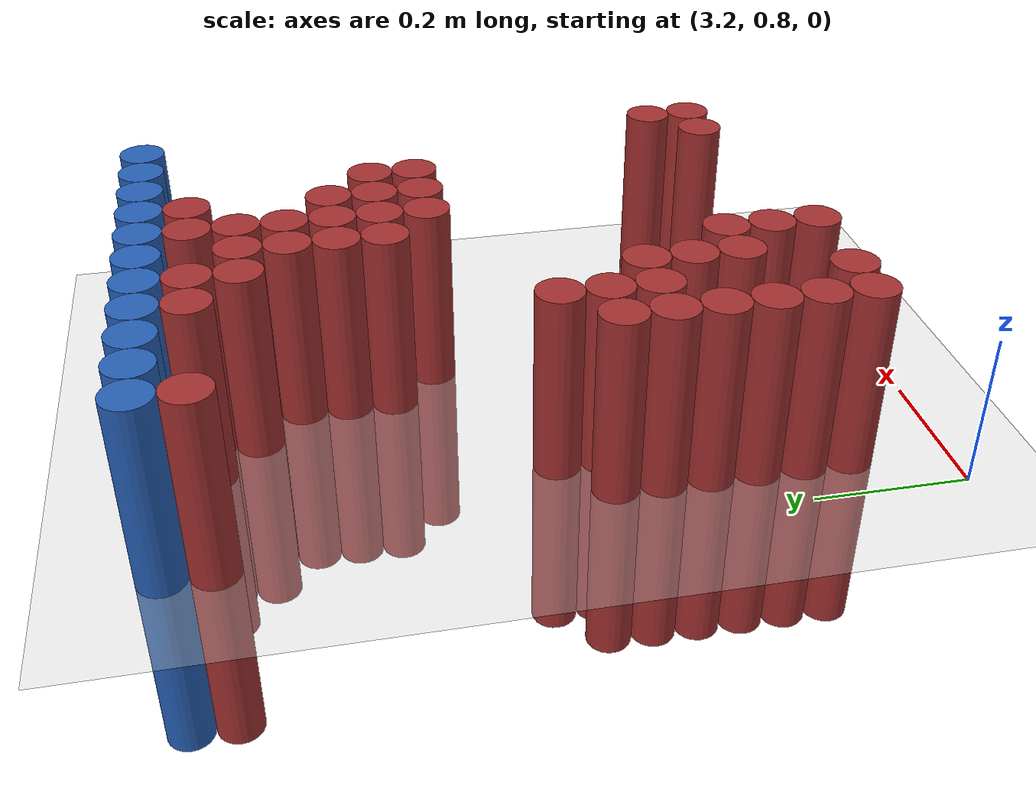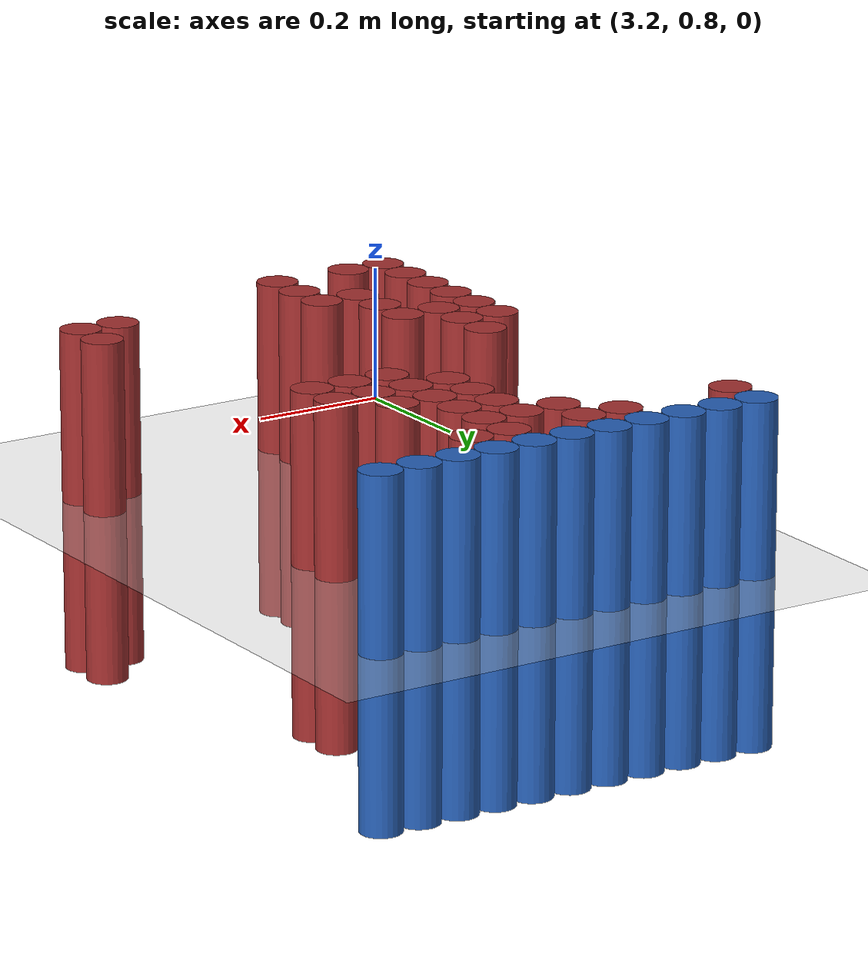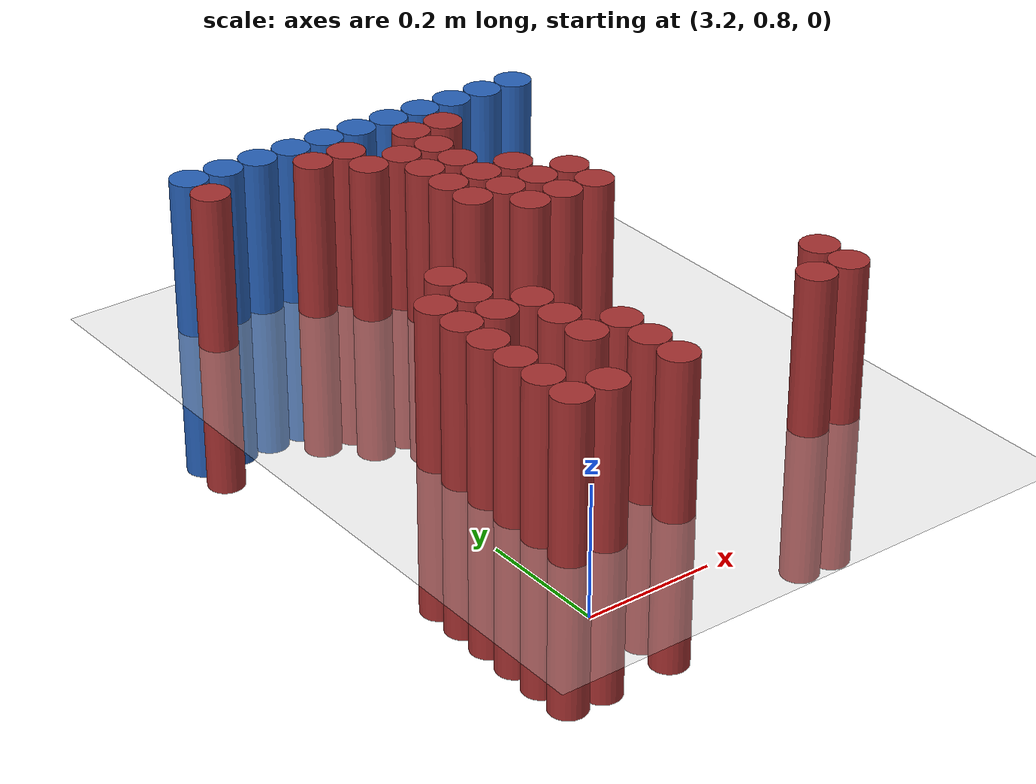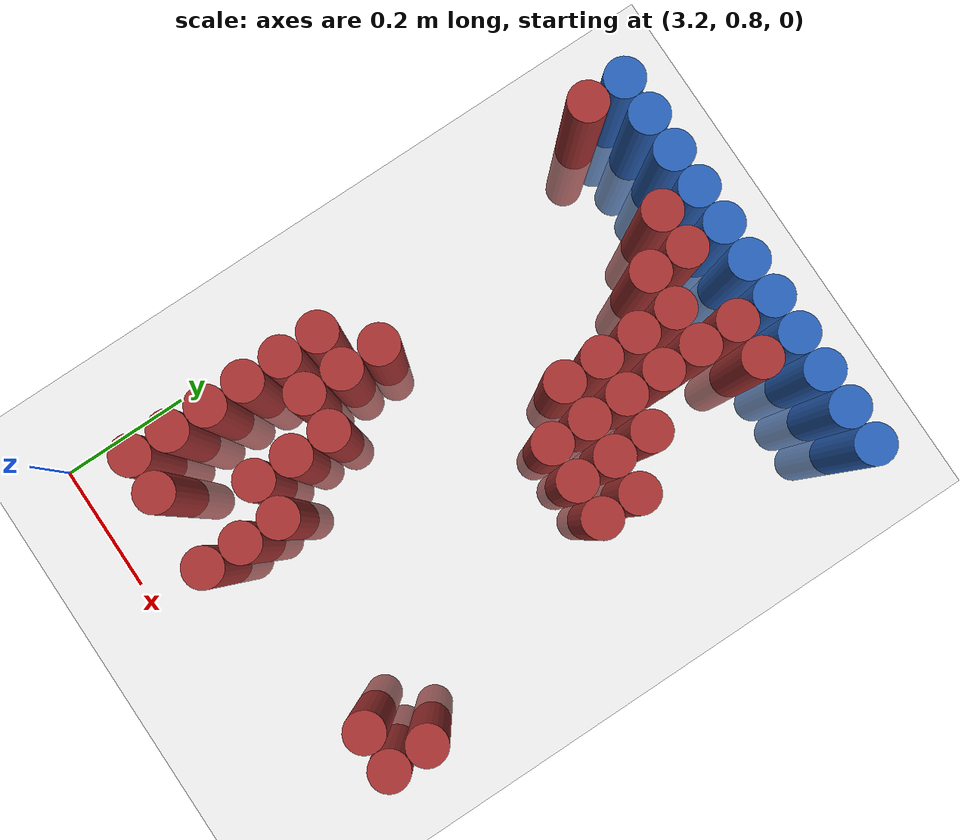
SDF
<sdf version="1.6">
 <world name="default">
  <model name="ground_plane">
   <static>1</static>
   <link name="link">
    <collision name="collision">
     <geometry><plane><normal>0 0 1</normal><size>100 100</size></plane></geometry>
     <surface><friction><ode><mu>100</mu><mu2>50</mu2></ode></friction></surface>
    </collision>
    <visual name="visual">
     <cast_shadows>0</cast_shadows>
     <geometry><plane><normal>0 0 1</normal><size>100 100</size></plane></geometry>
     <material>
      <script><uri>file://media/materials/scripts/gazebo.material</uri><name>Gazebo/Grey</name></script>
     </material>
    </visual>
   </link>
  </model>
  <model name="unit_cylinder_114">
   <static>1</static>
   <pose>3.210000 1.770000 0.000000 0.000000 0.000000 0.000000</pose>
   <link name="link">
    <inertial>
     <mass>1</mass>
     <inertia><ixx>0.145833</ixx><ixy>0</ixy><ixz>0</ixz><iyy>0.145833</iyy><iyz>0</iyz><izz>0.125</izz></inertia>
    </inertial>
    <collision name="collision">
     <geometry><cylinder><radius>0.030000</radius><length>0.5</length></cylinder></geometry>
    </collision>
    <visual name="visual">
     <geometry><cylinder><radius>0.030000</radius><length>0.5</length></cylinder></geometry>
     <material>
      <ambient>0.152000 0.379000 0.720000 1</ambient>
      <diffuse>0.152000 0.379000 0.720000 1</diffuse>
     </material>
     <material>
      <script><name>Gazebo/Grey</name><uri>file://media/materials/scripts/gazebo.material</uri></script>
     </material>
    </visual>
   </link>
  </model>
  <model name="unit_cylinder_115">
   <static>1</static>
   <pose>3.270000 1.770000 0.000000 0.000000 0.000000 0.000000</pose>
   <link name="link">
    <inertial>
     <mass>1</mass>
     <inertia><ixx>0.145833</ixx><ixy>0</ixy><ixz>0</ixz><iyy>0.145833</iyy><iyz>0</iyz><izz>0.125</izz></inertia>
    </inertial>
    <collision name="collision">
     <geometry><cylinder><radius>0.030000</radius><length>0.5</length></cylinder></geometry>
    </collision>
    <visual name="visual">
     <geometry><cylinder><radius>0.030000</radius><length>0.5</length></cylinder></geometry>
     <material>
      <ambient>0.152000 0.379000 0.720000 1</ambient>
      <diffuse>0.152000 0.379000 0.720000 1</diffuse>
     </material>
     <material>
      <script><name>Gazebo/Grey</name><uri>file://media/materials/scripts/gazebo.material</uri></script>
     </material>
    </visual>
   </link>
  </model>
  <model name="unit_cylinder_116">
   <static>1</static>
   <pose>3.330000 1.770000 0.000000 0.000000 0.000000 0.000000</pose>
   <link name="link">
    <inertial>
     <mass>1</mass>
     <inertia><ixx>0.145833</ixx><ixy>0</ixy><ixz>0</ixz><iyy>0.145833</iyy><iyz>0</iyz><izz>0.125</izz></inertia>
    </inertial>
    <collision name="collision">
     <geometry><cylinder><radius>0.030000</radius><length>0.5</length></cylinder></geometry>
    </collision>
    <visual name="visual">
     <geometry><cylinder><radius>0.030000</radius><length>0.5</length></cylinder></geometry>
     <material>
      <ambient>0.152000 0.379000 0.720000 1</ambient>
      <diffuse>0.152000 0.379000 0.720000 1</diffuse>
     </material>
     <material>
      <script><name>Gazebo/Grey</name><uri>file://media/materials/scripts/gazebo.material</uri></script>
     </material>
    </visual>
   </link>
  </model>
  <model name="unit_cylinder_117">
   <static>1</static>
   <pose>3.390000 1.770000 0.000000 0.000000 0.000000 0.000000</pose>
   <link name="link">
    <inertial>
     <mass>1</mass>
     <inertia><ixx>0.145833</ixx><ixy>0</ixy><ixz>0</ixz><iyy>0.145833</iyy><iyz>0</iyz><izz>0.125</izz></inertia>
    </inertial>
    <collision name="collision">
     <geometry><cylinder><radius>0.030000</radius><length>0.5</length></cylinder></geometry>
    </collision>
    <visual name="visual">
     <geometry><cylinder><radius>0.030000</radius><length>0.5</length></cylinder></geometry>
     <material>
      <ambient>0.152000 0.379000 0.720000 1</ambient>
      <diffuse>0.152000 0.379000 0.720000 1</diffuse>
     </material>
     <material>
      <script><name>Gazebo/Grey</name><uri>file://media/materials/scripts/gazebo.material</uri></script>
     </material>
    </visual>
   </link>
  </model>
  <model name="unit_cylinder_118">
   <static>1</static>
   <pose>3.450000 1.770000 0.000000 0.000000 0.000000 0.000000</pose>
   <link name="link">
    <inertial>
     <mass>1</mass>
     <inertia><ixx>0.145833</ixx><ixy>0</ixy><ixz>0</ixz><iyy>0.145833</iyy><iyz>0</iyz><izz>0.125</izz></inertia>
    </inertial>
    <collision name="collision">
     <geometry><cylinder><radius>0.030000</radius><length>0.5</length></cylinder></geometry>
    </collision>
    <visual name="visual">
     <geometry><cylinder><radius>0.030000</radius><length>0.5</length></cylinder></geometry>
     <material>
      <ambient>0.152000 0.379000 0.720000 1</ambient>
      <diffuse>0.152000 0.379000 0.720000 1</diffuse>
     </material>
     <material>
      <script><name>Gazebo/Grey</name><uri>file://media/materials/scripts/gazebo.material</uri></script>
     </material>
    </visual>
   </link>
  </model>
  <model name="unit_cylinder_119">
   <static>1</static>
   <pose>3.510000 1.770000 0.000000 0.000000 0.000000 0.000000</pose>
   <link name="link">
    <inertial>
     <mass>1</mass>
     <inertia><ixx>0.145833</ixx><ixy>0</ixy><ixz>0</ixz><iyy>0.145833</iyy><iyz>0</iyz><izz>0.125</izz></inertia>
    </inertial>
    <collision name="collision">
     <geometry><cylinder><radius>0.030000</radius><length>0.5</length></cylinder></geometry>
    </collision>
    <visual name="visual">
     <geometry><cylinder><radius>0.030000</radius><length>0.5</length></cylinder></geometry>
     <material>
      <ambient>0.152000 0.379000 0.720000 1</ambient>
      <diffuse>0.152000 0.379000 0.720000 1</diffuse>
     </material>
     <material>
      <script><name>Gazebo/Grey</name><uri>file://media/materials/scripts/gazebo.material</uri></script>
     </material>
    </visual>
   </link>
  </model>
  <model name="unit_cylinder_120">
   <static>1</static>
   <pose>3.570000 1.770000 0.000000 0.000000 0.000000 0.000000</pose>
   <link name="link">
    <inertial>
     <mass>1</mass>
     <inertia><ixx>0.145833</ixx><ixy>0</ixy><ixz>0</ixz><iyy>0.145833</iyy><iyz>0</iyz><izz>0.125</izz></inertia>
    </inertial>
    <collision name="collision">
     <geometry><cylinder><radius>0.030000</radius><length>0.5</length></cylinder></geometry>
    </collision>
    <visual name="visual">
     <geometry><cylinder><radius>0.030000</radius><length>0.5</length></cylinder></geometry>
     <material>
      <ambient>0.152000 0.379000 0.720000 1</ambient>
      <diffuse>0.152000 0.379000 0.720000 1</diffuse>
     </material>
     <material>
      <script><name>Gazebo/Grey</name><uri>file://media/materials/scripts/gazebo.material</uri></script>
     </material>
    </visual>
   </link>
  </model>
  <model name="unit_cylinder_121">
   <static>1</static>
   <pose>3.630000 1.770000 0.000000 0.000000 0.000000 0.000000</pose>
   <link name="link">
    <inertial>
     <mass>1</mass>
     <inertia><ixx>0.145833</ixx><ixy>0</ixy><ixz>0</ixz><iyy>0.145833</iyy><iyz>0</iyz><izz>0.125</izz></inertia>
    </inertial>
    <collision name="collision">
     <geometry><cylinder><radius>0.030000</radius><length>0.5</length></cylinder></geometry>
    </collision>
    <visual name="visual">
     <geometry><cylinder><radius>0.030000</radius><length>0.5</length></cylinder></geometry>
     <material>
      <ambient>0.152000 0.379000 0.720000 1</ambient>
      <diffuse>0.152000 0.379000 0.720000 1</diffuse>
     </material>
     <material>
      <script><name>Gazebo/Grey</name><uri>file://media/materials/scripts/gazebo.material</uri></script>
     </material>
    </visual>
   </link>
  </model>
  <model name="unit_cylinder_122">
   <static>1</static>
   <pose>3.690000 1.770000 0.000000 0.000000 0.000000 0.000000</pose>
   <link name="link">
    <inertial>
     <mass>1</mass>
     <inertia><ixx>0.145833</ixx><ixy>0</ixy><ixz>0</ixz><iyy>0.145833</iyy><iyz>0</iyz><izz>0.125</izz></inertia>
    </inertial>
    <collision name="collision">
     <geometry><cylinder><radius>0.030000</radius><length>0.5</length></cylinder></geometry>
    </collision>
    <visual name="visual">
     <geometry><cylinder><radius>0.030000</radius><length>0.5</length></cylinder></geometry>
     <material>
      <ambient>0.152000 0.379000 0.720000 1</ambient>
      <diffuse>0.152000 0.379000 0.720000 1</diffuse>
     </material>
     <material>
      <script><name>Gazebo/Grey</name><uri>file://media/materials/scripts/gazebo.material</uri></script>
     </material>
    </visual>
   </link>
  </model>
  <model name="unit_cylinder_123">
   <static>1</static>
   <pose>3.750000 1.770000 0.000000 0.000000 0.000000 0.000000</pose>
   <link name="link">
    <inertial>
     <mass>1</mass>
     <inertia><ixx>0.145833</ixx><ixy>0</ixy><ixz>0</ixz><iyy>0.145833</iyy><iyz>0</iyz><izz>0.125</izz></inertia>
    </inertial>
    <collision name="collision">
     <geometry><cylinder><radius>0.030000</radius><length>0.5</length></cylinder></geometry>
    </collision>
    <visual name="visual">
     <geometry><cylinder><radius>0.030000</radius><length>0.5</length></cylinder></geometry>
     <material>
      <ambient>0.152000 0.379000 0.720000 1</ambient>
      <diffuse>0.152000 0.379000 0.720000 1</diffuse>
     </material>
     <material>
      <script><name>Gazebo/Grey</name><uri>file://media/materials/scripts/gazebo.material</uri></script>
     </material>
    </visual>
   </link>
  </model>
  <model name="unit_cylinder_124">
   <static>1</static>
   <pose>3.810000 1.770000 0.000000 0.000000 0.000000 0.000000</pose>
   <link name="link">
    <inertial>
     <mass>1</mass>
     <inertia><ixx>0.145833</ixx><ixy>0</ixy><ixz>0</ixz><iyy>0.145833</iyy><iyz>0</iyz><izz>0.125</izz></inertia>
    </inertial>
    <collision name="collision">
     <geometry><cylinder><radius>0.030000</radius><length>0.5</length></cylinder></geometry>
    </collision>
    <visual name="visual">
     <geometry><cylinder><radius>0.030000</radius><length>0.5</length></cylinder></geometry>
     <material>
      <ambient>0.152000 0.379000 0.720000 1</ambient>
      <diffuse>0.152000 0.379000 0.720000 1</diffuse>
     </material>
     <material>
      <script><name>Gazebo/Grey</name><uri>file://media/materials/scripts/gazebo.material</uri></script>
     </material>
    </visual>
   </link>
  </model>
  <model name="unit_cylinder_130">
   <static>1</static>
   <pose>3.210000 1.710000 0.000000 0.000000 0.000000 0.000000</pose>
   <link name="link">
    <inertial>
     <mass>1</mass>
     <inertia><ixx>0.145833</ixx><ixy>0</ixy><ixz>0</ixz><iyy>0.145833</iyy><iyz>0</iyz><izz>0.125</izz></inertia>
    </inertial>
    <collision name="collision">
     <geometry><cylinder><radius>0.030000</radius><length>0.5</length></cylinder></geometry>
    </collision>
    <visual name="visual">
     <geometry><cylinder><radius>0.030000</radius><length>0.5</length></cylinder></geometry>
     <material>
      <ambient>0.648000 0.192000 0.192000 1</ambient>
      <diffuse>0.648000 0.192000 0.192000 1</diffuse>
     </material>
     <material>
      <script><name>Gazebo/Grey</name><uri>file://media/materials/scripts/gazebo.material</uri></script>
     </material>
    </visual>
   </link>
  </model>
  <model name="unit_cylinder_131">
   <static>1</static>
   <pose>3.390000 1.710000 0.000000 0.000000 0.000000 0.000000</pose>
   <link name="link">
    <inertial>
     <mass>1</mass>
     <inertia><ixx>0.145833</ixx><ixy>0</ixy><ixz>0</ixz><iyy>0.145833</iyy><iyz>0</iyz><izz>0.125</izz></inertia>
    </inertial>
    <collision name="collision">
     <geometry><cylinder><radius>0.030000</radius><length>0.5</length></cylinder></geometry>
    </collision>
    <visual name="visual">
     <geometry><cylinder><radius>0.030000</radius><length>0.5</length></cylinder></geometry>
     <material>
      <ambient>0.648000 0.192000 0.192000 1</ambient>
      <diffuse>0.648000 0.192000 0.192000 1</diffuse>
     </material>
     <material>
      <script><name>Gazebo/Grey</name><uri>file://media/materials/scripts/gazebo.material</uri></script>
     </material>
    </visual>
   </link>
  </model>
  <model name="unit_cylinder_132">
   <static>1</static>
   <pose>3.450000 1.710000 0.000000 0.000000 0.000000 0.000000</pose>
   <link name="link">
    <inertial>
     <mass>1</mass>
     <inertia><ixx>0.145833</ixx><ixy>0</ixy><ixz>0</ixz><iyy>0.145833</iyy><iyz>0</iyz><izz>0.125</izz></inertia>
    </inertial>
    <collision name="collision">
     <geometry><cylinder><radius>0.030000</radius><length>0.5</length></cylinder></geometry>
    </collision>
    <visual name="visual">
     <geometry><cylinder><radius>0.030000</radius><length>0.5</length></cylinder></geometry>
     <material>
      <ambient>0.648000 0.192000 0.192000 1</ambient>
      <diffuse>0.648000 0.192000 0.192000 1</diffuse>
     </material>
     <material>
      <script><name>Gazebo/Grey</name><uri>file://media/materials/scripts/gazebo.material</uri></script>
     </material>
    </visual>
   </link>
  </model>
  <model name="unit_cylinder_133">
   <static>1</static>
   <pose>3.570000 1.710000 0.000000 0.000000 0.000000 0.000000</pose>
   <link name="link">
    <inertial>
     <mass>1</mass>
     <inertia><ixx>0.145833</ixx><ixy>0</ixy><ixz>0</ixz><iyy>0.145833</iyy><iyz>0</iyz><izz>0.125</izz></inertia>
    </inertial>
    <collision name="collision">
     <geometry><cylinder><radius>0.030000</radius><length>0.5</length></cylinder></geometry>
    </collision>
    <visual name="visual">
     <geometry><cylinder><radius>0.030000</radius><length>0.5</length></cylinder></geometry>
     <material>
      <ambient>0.648000 0.192000 0.192000 1</ambient>
      <diffuse>0.648000 0.192000 0.192000 1</diffuse>
     </material>
     <material>
      <script><name>Gazebo/Grey</name><uri>file://media/materials/scripts/gazebo.material</uri></script>
     </material>
    </visual>
   </link>
  </model>
  <model name="unit_cylinder_134">
   <static>1</static>
   <pose>3.630000 1.710000 0.000000 0.000000 0.000000 0.000000</pose>
   <link name="link">
    <inertial>
     <mass>1</mass>
     <inertia><ixx>0.145833</ixx><ixy>0</ixy><ixz>0</ixz><iyy>0.145833</iyy><iyz>0</iyz><izz>0.125</izz></inertia>
    </inertial>
    <collision name="collision">
     <geometry><cylinder><radius>0.030000</radius><length>0.5</length></cylinder></geometry>
    </collision>
    <visual name="visual">
     <geometry><cylinder><radius>0.030000</radius><length>0.5</length></cylinder></geometry>
     <material>
      <ambient>0.648000 0.192000 0.192000 1</ambient>
      <diffuse>0.648000 0.192000 0.192000 1</diffuse>
     </material>
     <material>
      <script><name>Gazebo/Grey</name><uri>file://media/materials/scripts/gazebo.material</uri></script>
     </material>
    </visual>
   </link>
  </model>
  <model name="unit_cylinder_146">
   <static>1</static>
   <pose>3.450000 1.650000 0.000000 0.000000 0.000000 0.000000</pose>
   <link name="link">
    <inertial>
     <mass>1</mass>
     <inertia><ixx>0.145833</ixx><ixy>0</ixy><ixz>0</ixz><iyy>0.145833</iyy><iyz>0</iyz><izz>0.125</izz></inertia>
    </inertial>
    <collision name="collision">
     <geometry><cylinder><radius>0.030000</radius><length>0.5</length></cylinder></geometry>
    </collision>
    <visual name="visual">
     <geometry><cylinder><radius>0.030000</radius><length>0.5</length></cylinder></geometry>
     <material>
      <ambient>0.648000 0.192000 0.192000 1</ambient>
      <diffuse>0.648000 0.192000 0.192000 1</diffuse>
     </material>
     <material>
      <script><name>Gazebo/Grey</name><uri>file://media/materials/scripts/gazebo.material</uri></script>
     </material>
    </visual>
   </link>
  </model>
  <model name="unit_cylinder_147">
   <static>1</static>
   <pose>3.510000 1.650000 0.000000 0.000000 0.000000 0.000000</pose>
   <link name="link">
    <inertial>
     <mass>1</mass>
     <inertia><ixx>0.145833</ixx><ixy>0</ixy><ixz>0</ixz><iyy>0.145833</iyy><iyz>0</iyz><izz>0.125</izz></inertia>
    </inertial>
    <collision name="collision">
     <geometry><cylinder><radius>0.030000</radius><length>0.5</length></cylinder></geometry>
    </collision>
    <visual name="visual">
     <geometry><cylinder><radius>0.030000</radius><length>0.5</length></cylinder></geometry>
     <material>
      <ambient>0.648000 0.192000 0.192000 1</ambient>
      <diffuse>0.648000 0.192000 0.192000 1</diffuse>
     </material>
     <material>
      <script><name>Gazebo/Grey</name><uri>file://media/materials/scripts/gazebo.material</uri></script>
     </material>
    </visual>
   </link>
  </model>
  <model name="unit_cylinder_148">
   <static>1</static>
   <pose>3.570000 1.650000 0.000000 0.000000 0.000000 0.000000</pose>
   <link name="link">
    <inertial>
     <mass>1</mass>
     <inertia><ixx>0.145833</ixx><ixy>0</ixy><ixz>0</ixz><iyy>0.145833</iyy><iyz>0</iyz><izz>0.125</izz></inertia>
    </inertial>
    <collision name="collision">
     <geometry><cylinder><radius>0.030000</radius><length>0.5</length></cylinder></geometry>
    </collision>
    <visual name="visual">
     <geometry><cylinder><radius>0.030000</radius><length>0.5</length></cylinder></geometry>
     <material>
      <ambient>0.648000 0.192000 0.192000 1</ambient>
      <diffuse>0.648000 0.192000 0.192000 1</diffuse>
     </material>
     <material>
      <script><name>Gazebo/Grey</name><uri>file://media/materials/scripts/gazebo.material</uri></script>
     </material>
    </visual>
   </link>
  </model>
  <model name="unit_cylinder_164">
   <static>1</static>
   <pose>3.510000 1.590000 0.000000 0.000000 0.000000 0.000000</pose>
   <link name="link">
    <inertial>
     <mass>1</mass>
     <inertia><ixx>0.145833</ixx><ixy>0</ixy><ixz>0</ixz><iyy>0.145833</iyy><iyz>0</iyz><izz>0.125</izz></inertia>
    </inertial>
    <collision name="collision">
     <geometry><cylinder><radius>0.030000</radius><length>0.5</length></cylinder></geometry>
    </collision>
    <visual name="visual">
     <geometry><cylinder><radius>0.030000</radius><length>0.5</length></cylinder></geometry>
     <material>
      <ambient>0.648000 0.192000 0.192000 1</ambient>
      <diffuse>0.648000 0.192000 0.192000 1</diffuse>
     </material>
     <material>
      <script><name>Gazebo/Grey</name><uri>file://media/materials/scripts/gazebo.material</uri></script>
     </material>
    </visual>
   </link>
  </model>
  <model name="unit_cylinder_165">
   <static>1</static>
   <pose>3.570000 1.590000 0.000000 0.000000 0.000000 0.000000</pose>
   <link name="link">
    <inertial>
     <mass>1</mass>
     <inertia><ixx>0.145833</ixx><ixy>0</ixy><ixz>0</ixz><iyy>0.145833</iyy><iyz>0</iyz><izz>0.125</izz></inertia>
    </inertial>
    <collision name="collision">
     <geometry><cylinder><radius>0.030000</radius><length>0.5</length></cylinder></geometry>
    </collision>
    <visual name="visual">
     <geometry><cylinder><radius>0.030000</radius><length>0.5</length></cylinder></geometry>
     <material>
      <ambient>0.648000 0.192000 0.192000 1</ambient>
      <diffuse>0.648000 0.192000 0.192000 1</diffuse>
     </material>
     <material>
      <script><name>Gazebo/Grey</name><uri>file://media/materials/scripts/gazebo.material</uri></script>
     </material>
    </visual>
   </link>
  </model>
  <model name="unit_cylinder_174">
   <static>1</static>
   <pose>3.510000 1.530000 0.000000 0.000000 0.000000 0.000000</pose>
   <link name="link">
    <inertial>
     <mass>1</mass>
     <inertia><ixx>0.145833</ixx><ixy>0</ixy><ixz>0</ixz><iyy>0.145833</iyy><iyz>0</iyz><izz>0.125</izz></inertia>
    </inertial>
    <collision name="collision">
     <geometry><cylinder><radius>0.030000</radius><length>0.5</length></cylinder></geometry>
    </collision>
    <visual name="visual">
     <geometry><cylinder><radius>0.030000</radius><length>0.5</length></cylinder></geometry>
     <material>
      <ambient>0.648000 0.192000 0.192000 1</ambient>
      <diffuse>0.648000 0.192000 0.192000 1</diffuse>
     </material>
     <material>
      <script><name>Gazebo/Grey</name><uri>file://media/materials/scripts/gazebo.material</uri></script>
     </material>
    </visual>
   </link>
  </model>
  <model name="unit_cylinder_175">
   <static>1</static>
   <pose>3.570000 1.530000 0.000000 0.000000 0.000000 0.000000</pose>
   <link name="link">
    <inertial>
     <mass>1</mass>
     <inertia><ixx>0.145833</ixx><ixy>0</ixy><ixz>0</ixz><iyy>0.145833</iyy><iyz>0</iyz><izz>0.125</izz></inertia>
    </inertial>
    <collision name="collision">
     <geometry><cylinder><radius>0.030000</radius><length>0.5</length></cylinder></geometry>
    </collision>
    <visual name="visual">
     <geometry><cylinder><radius>0.030000</radius><length>0.5</length></cylinder></geometry>
     <material>
      <ambient>0.648000 0.192000 0.192000 1</ambient>
      <diffuse>0.648000 0.192000 0.192000 1</diffuse>
     </material>
     <material>
      <script><name>Gazebo/Grey</name><uri>file://media/materials/scripts/gazebo.material</uri></script>
     </material>
    </visual>
   </link>
  </model>
  <model name="unit_cylinder_176">
   <static>1</static>
   <pose>3.630000 1.530000 0.000000 0.000000 0.000000 0.000000</pose>
   <link name="link">
    <inertial>
     <mass>1</mass>
     <inertia><ixx>0.145833</ixx><ixy>0</ixy><ixz>0</ixz><iyy>0.145833</iyy><iyz>0</iyz><izz>0.125</izz></inertia>
    </inertial>
    <collision name="collision">
     <geometry><cylinder><radius>0.030000</radius><length>0.5</length></cylinder></geometry>
    </collision>
    <visual name="visual">
     <geometry><cylinder><radius>0.030000</radius><length>0.5</length></cylinder></geometry>
     <material>
      <ambient>0.648000 0.192000 0.192000 1</ambient>
      <diffuse>0.648000 0.192000 0.192000 1</diffuse>
     </material>
     <material>
      <script><name>Gazebo/Grey</name><uri>file://media/materials/scripts/gazebo.material</uri></script>
     </material>
    </visual>
   </link>
  </model>
  <model name="unit_cylinder_184">
   <static>1</static>
   <pose>3.510000 1.470000 0.000000 0.000000 0.000000 0.000000</pose>
   <link name="link">
    <inertial>
     <mass>1</mass>
     <inertia><ixx>0.145833</ixx><ixy>0</ixy><ixz>0</ixz><iyy>0.145833</iyy><iyz>0</iyz><izz>0.125</izz></inertia>
    </inertial>
    <collision name="collision">
     <geometry><cylinder><radius>0.030000</radius><length>0.5</length></cylinder></geometry>
    </collision>
    <visual name="visual">
     <geometry><cylinder><radius>0.030000</radius><length>0.5</length></cylinder></geometry>
     <material>
      <ambient>0.648000 0.192000 0.192000 1</ambient>
      <diffuse>0.648000 0.192000 0.192000 1</diffuse>
     </material>
     <material>
      <script><name>Gazebo/Grey</name><uri>file://media/materials/scripts/gazebo.material</uri></script>
     </material>
    </visual>
   </link>
  </model>
  <model name="unit_cylinder_185">
   <static>1</static>
   <pose>3.570000 1.470000 0.000000 0.000000 0.000000 0.000000</pose>
   <link name="link">
    <inertial>
     <mass>1</mass>
     <inertia><ixx>0.145833</ixx><ixy>0</ixy><ixz>0</ixz><iyy>0.145833</iyy><iyz>0</iyz><izz>0.125</izz></inertia>
    </inertial>
    <collision name="collision">
     <geometry><cylinder><radius>0.030000</radius><length>0.5</length></cylinder></geometry>
    </collision>
    <visual name="visual">
     <geometry><cylinder><radius>0.030000</radius><length>0.5</length></cylinder></geometry>
     <material>
      <ambient>0.648000 0.192000 0.192000 1</ambient>
      <diffuse>0.648000 0.192000 0.192000 1</diffuse>
     </material>
     <material>
      <script><name>Gazebo/Grey</name><uri>file://media/materials/scripts/gazebo.material</uri></script>
     </material>
    </visual>
   </link>
  </model>
  <model name="unit_cylinder_186">
   <static>1</static>
   <pose>3.630000 1.470000 0.000000 0.000000 0.000000 0.000000</pose>
   <link name="link">
    <inertial>
     <mass>1</mass>
     <inertia><ixx>0.145833</ixx><ixy>0</ixy><ixz>0</ixz><iyy>0.145833</iyy><iyz>0</iyz><izz>0.125</izz></inertia>
    </inertial>
    <collision name="collision">
     <geometry><cylinder><radius>0.030000</radius><length>0.5</length></cylinder></geometry>
    </collision>
    <visual name="visual">
     <geometry><cylinder><radius>0.030000</radius><length>0.5</length></cylinder></geometry>
     <material>
      <ambient>0.648000 0.192000 0.192000 1</ambient>
      <diffuse>0.648000 0.192000 0.192000 1</diffuse>
     </material>
     <material>
      <script><name>Gazebo/Grey</name><uri>file://media/materials/scripts/gazebo.material</uri></script>
     </material>
    </visual>
   </link>
  </model>
  <model name="unit_cylinder_187">
   <static>1</static>
   <pose>3.690000 1.470000 0.000000 0.000000 0.000000 0.000000</pose>
   <link name="link">
    <inertial>
     <mass>1</mass>
     <inertia><ixx>0.145833</ixx><ixy>0</ixy><ixz>0</ixz><iyy>0.145833</iyy><iyz>0</iyz><izz>0.125</izz></inertia>
    </inertial>
    <collision name="collision">
     <geometry><cylinder><radius>0.030000</radius><length>0.5</length></cylinder></geometry>
    </collision>
    <visual name="visual">
     <geometry><cylinder><radius>0.030000</radius><length>0.5</length></cylinder></geometry>
     <material>
      <ambient>0.648000 0.192000 0.192000 1</ambient>
      <diffuse>0.648000 0.192000 0.192000 1</diffuse>
     </material>
     <material>
      <script><name>Gazebo/Grey</name><uri>file://media/materials/scripts/gazebo.material</uri></script>
     </material>
    </visual>
   </link>
  </model>
  <model name="unit_cylinder_194">
   <static>1</static>
   <pose>3.570000 1.410000 0.000000 0.000000 0.000000 0.000000</pose>
   <link name="link">
    <inertial>
     <mass>1</mass>
     <inertia><ixx>0.145833</ixx><ixy>0</ixy><ixz>0</ixz><iyy>0.145833</iyy><iyz>0</iyz><izz>0.125</izz></inertia>
    </inertial>
    <collision name="collision">
     <geometry><cylinder><radius>0.030000</radius><length>0.5</length></cylinder></geometry>
    </collision>
    <visual name="visual">
     <geometry><cylinder><radius>0.030000</radius><length>0.5</length></cylinder></geometry>
     <material>
      <ambient>0.648000 0.192000 0.192000 1</ambient>
      <diffuse>0.648000 0.192000 0.192000 1</diffuse>
     </material>
     <material>
      <script><name>Gazebo/Grey</name><uri>file://media/materials/scripts/gazebo.material</uri></script>
     </material>
    </visual>
   </link>
  </model>
  <model name="unit_cylinder_195">
   <static>1</static>
   <pose>3.630000 1.410000 0.000000 0.000000 0.000000 0.000000</pose>
   <link name="link">
    <inertial>
     <mass>1</mass>
     <inertia><ixx>0.145833</ixx><ixy>0</ixy><ixz>0</ixz><iyy>0.145833</iyy><iyz>0</iyz><izz>0.125</izz></inertia>
    </inertial>
    <collision name="collision">
     <geometry><cylinder><radius>0.030000</radius><length>0.5</length></cylinder></geometry>
    </collision>
    <visual name="visual">
     <geometry><cylinder><radius>0.030000</radius><length>0.5</length></cylinder></geometry>
     <material>
      <ambient>0.648000 0.192000 0.192000 1</ambient>
      <diffuse>0.648000 0.192000 0.192000 1</diffuse>
     </material>
     <material>
      <script><name>Gazebo/Grey</name><uri>file://media/materials/scripts/gazebo.material</uri></script>
     </material>
    </visual>
   </link>
  </model>
  <model name="unit_cylinder_196">
   <static>1</static>
   <pose>3.690000 1.410000 0.000000 0.000000 0.000000 0.000000</pose>
   <link name="link">
    <inertial>
     <mass>1</mass>
     <inertia><ixx>0.145833</ixx><ixy>0</ixy><ixz>0</ixz><iyy>0.145833</iyy><iyz>0</iyz><izz>0.125</izz></inertia>
    </inertial>
    <collision name="collision">
     <geometry><cylinder><radius>0.030000</radius><length>0.5</length></cylinder></geometry>
    </collision>
    <visual name="visual">
     <geometry><cylinder><radius>0.030000</radius><length>0.5</length></cylinder></geometry>
     <material>
      <ambient>0.648000 0.192000 0.192000 1</ambient>
      <diffuse>0.648000 0.192000 0.192000 1</diffuse>
     </material>
     <material>
      <script><name>Gazebo/Grey</name><uri>file://media/materials/scripts/gazebo.material</uri></script>
     </material>
    </visual>
   </link>
  </model>
  <model name="unit_cylinder_202">
   <static>1</static>
   <pose>3.330000 1.290000 0.000000 0.000000 0.000000 0.000000</pose>
   <link name="link">
    <inertial>
     <mass>1</mass>
     <inertia><ixx>0.145833</ixx><ixy>0</ixy><ixz>0</ixz><iyy>0.145833</iyy><iyz>0</iyz><izz>0.125</izz></inertia>
    </inertial>
    <collision name="collision">
     <geometry><cylinder><radius>0.030000</radius><length>0.5</length></cylinder></geometry>
    </collision>
    <visual name="visual">
     <geometry><cylinder><radius>0.030000</radius><length>0.5</length></cylinder></geometry>
     <material>
      <ambient>0.648000 0.192000 0.192000 1</ambient>
      <diffuse>0.648000 0.192000 0.192000 1</diffuse>
     </material>
     <material>
      <script><name>Gazebo/Grey</name><uri>file://media/materials/scripts/gazebo.material</uri></script>
     </material>
    </visual>
   </link>
  </model>
  <model name="unit_cylinder_205">
   <static>1</static>
   <pose>3.270000 1.230000 0.000000 0.000000 0.000000 0.000000</pose>
   <link name="link">
    <inertial>
     <mass>1</mass>
     <inertia><ixx>0.145833</ixx><ixy>0</ixy><ixz>0</ixz><iyy>0.145833</iyy><iyz>0</iyz><izz>0.125</izz></inertia>
    </inertial>
    <collision name="collision">
     <geometry><cylinder><radius>0.030000</radius><length>0.5</length></cylinder></geometry>
    </collision>
    <visual name="visual">
     <geometry><cylinder><radius>0.030000</radius><length>0.5</length></cylinder></geometry>
     <material>
      <ambient>0.648000 0.192000 0.192000 1</ambient>
      <diffuse>0.648000 0.192000 0.192000 1</diffuse>
     </material>
     <material>
      <script><name>Gazebo/Grey</name><uri>file://media/materials/scripts/gazebo.material</uri></script>
     </material>
    </visual>
   </link>
  </model>
  <model name="unit_cylinder_206">
   <static>1</static>
   <pose>3.330000 1.230000 0.000000 0.000000 0.000000 0.000000</pose>
   <link name="link">
    <inertial>
     <mass>1</mass>
     <inertia><ixx>0.145833</ixx><ixy>0</ixy><ixz>0</ixz><iyy>0.145833</iyy><iyz>0</iyz><izz>0.125</izz></inertia>
    </inertial>
    <collision name="collision">
     <geometry><cylinder><radius>0.030000</radius><length>0.5</length></cylinder></geometry>
    </collision>
    <visual name="visual">
     <geometry><cylinder><radius>0.030000</radius><length>0.5</length></cylinder></geometry>
     <material>
      <ambient>0.648000 0.192000 0.192000 1</ambient>
      <diffuse>0.648000 0.192000 0.192000 1</diffuse>
     </material>
     <material>
      <script><name>Gazebo/Grey</name><uri>file://media/materials/scripts/gazebo.material</uri></script>
     </material>
    </visual>
   </link>
  </model>
  <model name="unit_cylinder_209">
   <static>1</static>
   <pose>3.270000 1.170000 0.000000 0.000000 0.000000 0.000000</pose>
   <link name="link">
    <inertial>
     <mass>1</mass>
     <inertia><ixx>0.145833</ixx><ixy>0</ixy><ixz>0</ixz><iyy>0.145833</iyy><iyz>0</iyz><izz>0.125</izz></inertia>
    </inertial>
    <collision name="collision">
     <geometry><cylinder><radius>0.030000</radius><length>0.5</length></cylinder></geometry>
    </collision>
    <visual name="visual">
     <geometry><cylinder><radius>0.030000</radius><length>0.5</length></cylinder></geometry>
     <material>
      <ambient>0.648000 0.192000 0.192000 1</ambient>
      <diffuse>0.648000 0.192000 0.192000 1</diffuse>
     </material>
     <material>
      <script><name>Gazebo/Grey</name><uri>file://media/materials/scripts/gazebo.material</uri></script>
     </material>
    </visual>
   </link>
  </model>
  <model name="unit_cylinder_210">
   <static>1</static>
   <pose>3.330000 1.170000 0.000000 0.000000 0.000000 0.000000</pose>
   <link name="link">
    <inertial>
     <mass>1</mass>
     <inertia><ixx>0.145833</ixx><ixy>0</ixy><ixz>0</ixz><iyy>0.145833</iyy><iyz>0</iyz><izz>0.125</izz></inertia>
    </inertial>
    <collision name="collision">
     <geometry><cylinder><radius>0.030000</radius><length>0.5</length></cylinder></geometry>
    </collision>
    <visual name="visual">
     <geometry><cylinder><radius>0.030000</radius><length>0.5</length></cylinder></geometry>
     <material>
      <ambient>0.648000 0.192000 0.192000 1</ambient>
      <diffuse>0.648000 0.192000 0.192000 1</diffuse>
     </material>
     <material>
      <script><name>Gazebo/Grey</name><uri>file://media/materials/scripts/gazebo.material</uri></script>
     </material>
    </visual>
   </link>
  </model>
  <model name="unit_cylinder_211">
   <static>1</static>
   <pose>3.390000 1.170000 0.000000 0.000000 0.000000 0.000000</pose>
   <link name="link">
    <inertial>
     <mass>1</mass>
     <inertia><ixx>0.145833</ixx><ixy>0</ixy><ixz>0</ixz><iyy>0.145833</iyy><iyz>0</iyz><izz>0.125</izz></inertia>
    </inertial>
    <collision name="collision">
     <geometry><cylinder><radius>0.030000</radius><length>0.5</length></cylinder></geometry>
    </collision>
    <visual name="visual">
     <geometry><cylinder><radius>0.030000</radius><length>0.5</length></cylinder></geometry>
     <material>
      <ambient>0.648000 0.192000 0.192000 1</ambient>
      <diffuse>0.648000 0.192000 0.192000 1</diffuse>
     </material>
     <material>
      <script><name>Gazebo/Grey</name><uri>file://media/materials/scripts/gazebo.material</uri></script>
     </material>
    </visual>
   </link>
  </model>
  <model name="unit_cylinder_214">
   <static>1</static>
   <pose>3.270000 1.110000 0.000000 0.000000 0.000000 0.000000</pose>
   <link name="link">
    <inertial>
     <mass>1</mass>
     <inertia><ixx>0.145833</ixx><ixy>0</ixy><ixz>0</ixz><iyy>0.145833</iyy><iyz>0</iyz><izz>0.125</izz></inertia>
    </inertial>
    <collision name="collision">
     <geometry><cylinder><radius>0.030000</radius><length>0.5</length></cylinder></geometry>
    </collision>
    <visual name="visual">
     <geometry><cylinder><radius>0.030000</radius><length>0.5</length></cylinder></geometry>
     <material>
      <ambient>0.648000 0.192000 0.192000 1</ambient>
      <diffuse>0.648000 0.192000 0.192000 1</diffuse>
     </material>
     <material>
      <script><name>Gazebo/Grey</name><uri>file://media/materials/scripts/gazebo.material</uri></script>
     </material>
    </visual>
   </link>
  </model>
  <model name="unit_cylinder_215">
   <static>1</static>
   <pose>3.390000 1.110000 0.000000 0.000000 0.000000 0.000000</pose>
   <link name="link">
    <inertial>
     <mass>1</mass>
     <inertia><ixx>0.145833</ixx><ixy>0</ixy><ixz>0</ixz><iyy>0.145833</iyy><iyz>0</iyz><izz>0.125</izz></inertia>
    </inertial>
    <collision name="collision">
     <geometry><cylinder><radius>0.030000</radius><length>0.5</length></cylinder></geometry>
    </collision>
    <visual name="visual">
     <geometry><cylinder><radius>0.030000</radius><length>0.5</length></cylinder></geometry>
     <material>
      <ambient>0.648000 0.192000 0.192000 1</ambient>
      <diffuse>0.648000 0.192000 0.192000 1</diffuse>
     </material>
     <material>
      <script><name>Gazebo/Grey</name><uri>file://media/materials/scripts/gazebo.material</uri></script>
     </material>
    </visual>
   </link>
  </model>
  <model name="unit_cylinder_218">
   <static>1</static>
   <pose>3.270000 1.050000 0.000000 0.000000 0.000000 0.000000</pose>
   <link name="link">
    <inertial>
     <mass>1</mass>
     <inertia><ixx>0.145833</ixx><ixy>0</ixy><ixz>0</ixz><iyy>0.145833</iyy><iyz>0</iyz><izz>0.125</izz></inertia>
    </inertial>
    <collision name="collision">
     <geometry><cylinder><radius>0.030000</radius><length>0.5</length></cylinder></geometry>
    </collision>
    <visual name="visual">
     <geometry><cylinder><radius>0.030000</radius><length>0.5</length></cylinder></geometry>
     <material>
      <ambient>0.648000 0.192000 0.192000 1</ambient>
      <diffuse>0.648000 0.192000 0.192000 1</diffuse>
     </material>
     <material>
      <script><name>Gazebo/Grey</name><uri>file://media/materials/scripts/gazebo.material</uri></script>
     </material>
    </visual>
   </link>
  </model>
  <model name="unit_cylinder_219">
   <static>1</static>
   <pose>3.390000 1.050000 0.000000 0.000000 0.000000 0.000000</pose>
   <link name="link">
    <inertial>
     <mass>1</mass>
     <inertia><ixx>0.145833</ixx><ixy>0</ixy><ixz>0</ixz><iyy>0.145833</iyy><iyz>0</iyz><izz>0.125</izz></inertia>
    </inertial>
    <collision name="collision">
     <geometry><cylinder><radius>0.030000</radius><length>0.5</length></cylinder></geometry>
    </collision>
    <visual name="visual">
     <geometry><cylinder><radius>0.030000</radius><length>0.5</length></cylinder></geometry>
     <material>
      <ambient>0.648000 0.192000 0.192000 1</ambient>
      <diffuse>0.648000 0.192000 0.192000 1</diffuse>
     </material>
     <material>
      <script><name>Gazebo/Grey</name><uri>file://media/materials/scripts/gazebo.material</uri></script>
     </material>
    </visual>
   </link>
  </model>
  <model name="unit_cylinder_220">
   <static>1</static>
   <pose>3.450000 1.050000 0.000000 0.000000 0.000000 0.000000</pose>
   <link name="link">
    <inertial>
     <mass>1</mass>
     <inertia><ixx>0.145833</ixx><ixy>0</ixy><ixz>0</ixz><iyy>0.145833</iyy><iyz>0</iyz><izz>0.125</izz></inertia>
    </inertial>
    <collision name="collision">
     <geometry><cylinder><radius>0.030000</radius><length>0.5</length></cylinder></geometry>
    </collision>
    <visual name="visual">
     <geometry><cylinder><radius>0.030000</radius><length>0.5</length></cylinder></geometry>
     <material>
      <ambient>0.648000 0.192000 0.192000 1</ambient>
      <diffuse>0.648000 0.192000 0.192000 1</diffuse>
     </material>
     <material>
      <script><name>Gazebo/Grey</name><uri>file://media/materials/scripts/gazebo.material</uri></script>
     </material>
    </visual>
   </link>
  </model>
  <model name="unit_cylinder_221">
   <static>1</static>
   <pose>3.810000 1.050000 0.000000 0.000000 0.000000 0.000000</pose>
   <link name="link">
    <inertial>
     <mass>1</mass>
     <inertia><ixx>0.145833</ixx><ixy>0</ixy><ixz>0</ixz><iyy>0.145833</iyy><iyz>0</iyz><izz>0.125</izz></inertia>
    </inertial>
    <collision name="collision">
     <geometry><cylinder><radius>0.030000</radius><length>0.5</length></cylinder></geometry>
    </collision>
    <visual name="visual">
     <geometry><cylinder><radius>0.030000</radius><length>0.5</length></cylinder></geometry>
     <material>
      <ambient>0.648000 0.192000 0.192000 1</ambient>
      <diffuse>0.648000 0.192000 0.192000 1</diffuse>
     </material>
     <material>
      <script><name>Gazebo/Grey</name><uri>file://media/materials/scripts/gazebo.material</uri></script>
     </material>
    </visual>
   </link>
  </model>
  <model name="unit_cylinder_225">
   <static>1</static>
   <pose>3.270000 0.990000 0.000000 0.000000 0.000000 0.000000</pose>
   <link name="link">
    <inertial>
     <mass>1</mass>
     <inertia><ixx>0.145833</ixx><ixy>0</ixy><ixz>0</ixz><iyy>0.145833</iyy><iyz>0</iyz><izz>0.125</izz></inertia>
    </inertial>
    <collision name="collision">
     <geometry><cylinder><radius>0.030000</radius><length>0.5</length></cylinder></geometry>
    </collision>
    <visual name="visual">
     <geometry><cylinder><radius>0.030000</radius><length>0.5</length></cylinder></geometry>
     <material>
      <ambient>0.648000 0.192000 0.192000 1</ambient>
      <diffuse>0.648000 0.192000 0.192000 1</diffuse>
     </material>
     <material>
      <script><name>Gazebo/Grey</name><uri>file://media/materials/scripts/gazebo.material</uri></script>
     </material>
    </visual>
   </link>
  </model>
  <model name="unit_cylinder_226">
   <static>1</static>
   <pose>3.450000 0.990000 0.000000 0.000000 0.000000 0.000000</pose>
   <link name="link">
    <inertial>
     <mass>1</mass>
     <inertia><ixx>0.145833</ixx><ixy>0</ixy><ixz>0</ixz><iyy>0.145833</iyy><iyz>0</iyz><izz>0.125</izz></inertia>
    </inertial>
    <collision name="collision">
     <geometry><cylinder><radius>0.030000</radius><length>0.5</length></cylinder></geometry>
    </collision>
    <visual name="visual">
     <geometry><cylinder><radius>0.030000</radius><length>0.5</length></cylinder></geometry>
     <material>
      <ambient>0.648000 0.192000 0.192000 1</ambient>
      <diffuse>0.648000 0.192000 0.192000 1</diffuse>
     </material>
     <material>
      <script><name>Gazebo/Grey</name><uri>file://media/materials/scripts/gazebo.material</uri></script>
     </material>
    </visual>
   </link>
  </model>
  <model name="unit_cylinder_227">
   <static>1</static>
   <pose>3.750000 0.990000 0.000000 0.000000 0.000000 0.000000</pose>
   <link name="link">
    <inertial>
     <mass>1</mass>
     <inertia><ixx>0.145833</ixx><ixy>0</ixy><ixz>0</ixz><iyy>0.145833</iyy><iyz>0</iyz><izz>0.125</izz></inertia>
    </inertial>
    <collision name="collision">
     <geometry><cylinder><radius>0.030000</radius><length>0.5</length></cylinder></geometry>
    </collision>
    <visual name="visual">
     <geometry><cylinder><radius>0.030000</radius><length>0.5</length></cylinder></geometry>
     <material>
      <ambient>0.648000 0.192000 0.192000 1</ambient>
      <diffuse>0.648000 0.192000 0.192000 1</diffuse>
     </material>
     <material>
      <script><name>Gazebo/Grey</name><uri>file://media/materials/scripts/gazebo.material</uri></script>
     </material>
    </visual>
   </link>
  </model>
  <model name="unit_cylinder_228">
   <static>1</static>
   <pose>3.810000 0.990000 0.000000 0.000000 0.000000 0.000000</pose>
   <link name="link">
    <inertial>
     <mass>1</mass>
     <inertia><ixx>0.145833</ixx><ixy>0</ixy><ixz>0</ixz><iyy>0.145833</iyy><iyz>0</iyz><izz>0.125</izz></inertia>
    </inertial>
    <collision name="collision">
     <geometry><cylinder><radius>0.030000</radius><length>0.5</length></cylinder></geometry>
    </collision>
    <visual name="visual">
     <geometry><cylinder><radius>0.030000</radius><length>0.5</length></cylinder></geometry>
     <material>
      <ambient>0.648000 0.192000 0.192000 1</ambient>
      <diffuse>0.648000 0.192000 0.192000 1</diffuse>
     </material>
     <material>
      <script><name>Gazebo/Grey</name><uri>file://media/materials/scripts/gazebo.material</uri></script>
     </material>
    </visual>
   </link>
  </model>
  <model name="unit_cylinder_232">
   <static>1</static>
   <pose>3.270000 0.930000 0.000000 0.000000 0.000000 0.000000</pose>
   <link name="link">
    <inertial>
     <mass>1</mass>
     <inertia><ixx>0.145833</ixx><ixy>0</ixy><ixz>0</ixz><iyy>0.145833</iyy><iyz>0</iyz><izz>0.125</izz></inertia>
    </inertial>
    <collision name="collision">
     <geometry><cylinder><radius>0.030000</radius><length>0.5</length></cylinder></geometry>
    </collision>
    <visual name="visual">
     <geometry><cylinder><radius>0.030000</radius><length>0.5</length></cylinder></geometry>
     <material>
      <ambient>0.648000 0.192000 0.192000 1</ambient>
      <diffuse>0.648000 0.192000 0.192000 1</diffuse>
     </material>
     <material>
      <script><name>Gazebo/Grey</name><uri>file://media/materials/scripts/gazebo.material</uri></script>
     </material>
    </visual>
   </link>
  </model>
  <model name="unit_cylinder_233">
   <static>1</static>
   <pose>3.330000 0.930000 0.000000 0.000000 0.000000 0.000000</pose>
   <link name="link">
    <inertial>
     <mass>1</mass>
     <inertia><ixx>0.145833</ixx><ixy>0</ixy><ixz>0</ixz><iyy>0.145833</iyy><iyz>0</iyz><izz>0.125</izz></inertia>
    </inertial>
    <collision name="collision">
     <geometry><cylinder><radius>0.030000</radius><length>0.5</length></cylinder></geometry>
    </collision>
    <visual name="visual">
     <geometry><cylinder><radius>0.030000</radius><length>0.5</length></cylinder></geometry>
     <material>
      <ambient>0.648000 0.192000 0.192000 1</ambient>
      <diffuse>0.648000 0.192000 0.192000 1</diffuse>
     </material>
     <material>
      <script><name>Gazebo/Grey</name><uri>file://media/materials/scripts/gazebo.material</uri></script>
     </material>
    </visual>
   </link>
  </model>
  <model name="unit_cylinder_234">
   <static>1</static>
   <pose>3.450000 0.930000 0.000000 0.000000 0.000000 0.000000</pose>
   <link name="link">
    <inertial>
     <mass>1</mass>
     <inertia><ixx>0.145833</ixx><ixy>0</ixy><ixz>0</ixz><iyy>0.145833</iyy><iyz>0</iyz><izz>0.125</izz></inertia>
    </inertial>
    <collision name="collision">
     <geometry><cylinder><radius>0.030000</radius><length>0.5</length></cylinder></geometry>
    </collision>
    <visual name="visual">
     <geometry><cylinder><radius>0.030000</radius><length>0.5</length></cylinder></geometry>
     <material>
      <ambient>0.648000 0.192000 0.192000 1</ambient>
      <diffuse>0.648000 0.192000 0.192000 1</diffuse>
     </material>
     <material>
      <script><name>Gazebo/Grey</name><uri>file://media/materials/scripts/gazebo.material</uri></script>
     </material>
    </visual>
   </link>
  </model>
 </world>
</sdf>
